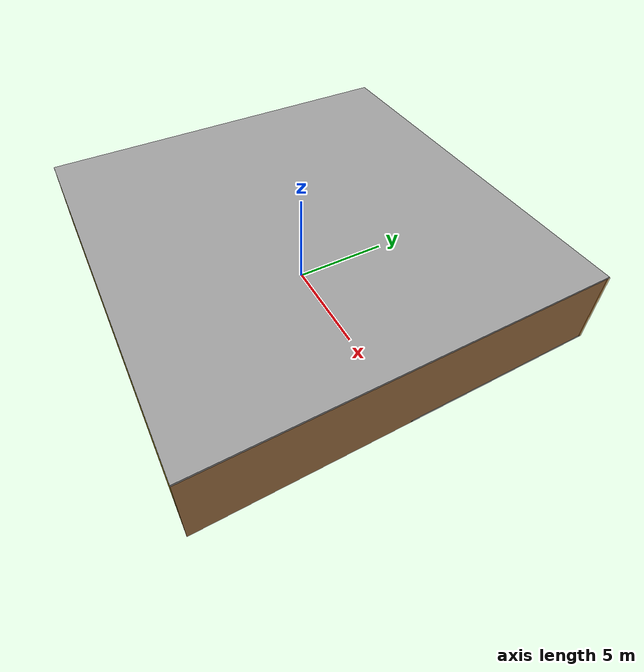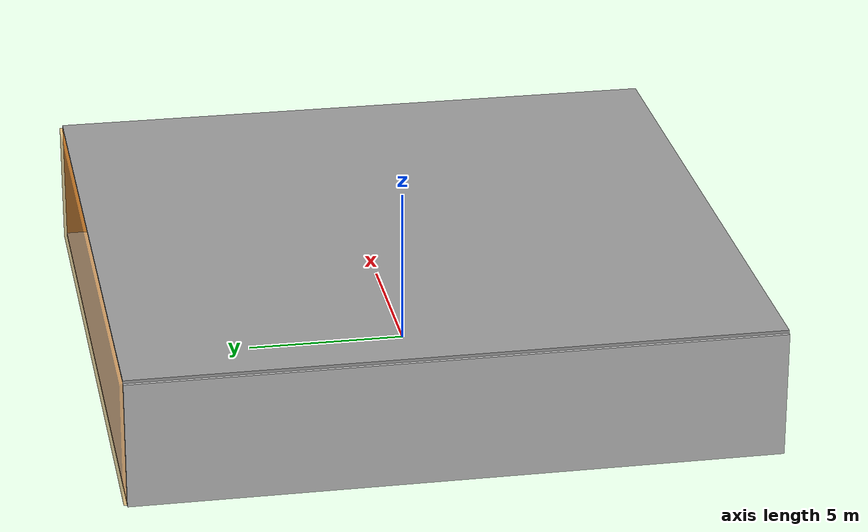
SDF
<sdf version="1.4">
 <world name="default">
  <physics type="ode">
   <max_step_size>0.001</max_step_size>
   <real_time_factor>1</real_time_factor>
   <real_time_update_rate>1000</real_time_update_rate>
   <gravity>0 0 -9.8</gravity>
  </physics>
  <scene><ambient>0.4 0.4 0.4 1</ambient><background>0.7 0.7 0.7 1</background><shadows>1</shadows></scene>
  <model name="Surrounding">
   <static>1</static>
   <link name="Ceiling">
    <collision name="Ceiling_Collision"><geometry><box><size>20 20 0.1</size></box></geometry></collision>
    <visual name="Ceiling_Visual">
     <geometry><box><size>20 20 0.1</size></box></geometry>
     <material>
      <script><uri>file://media/materials/scripts/gazebo.material</uri><name>Gazebo/GreyGradientSky</name></script>
     </material>
    </visual>
    <pose>0 0 4.05 0 0 0</pose>
   </link>
   <link name="Wall_South">
    <collision name="Wall_South_Collision">
     <geometry><box><size>20 0 4</size></box></geometry>
     <pose>0 0 2 0 -0 0</pose>
    </collision>
    <visual name="Wall_South_Visual">
     <pose>0 0 2 0 -0 0</pose>
     <geometry><box><size>20 0 4</size></box></geometry>
     <material>
      <script><uri>file://media/materials/scripts/gazebo.material</uri><name>Gazebo/ZincYellow</name></script>
     </material>
    </visual>
    <velocity_decay><linear>0</linear><angular>0</angular></velocity_decay>
    <pose>0 -10 0 0 -0 0</pose>
   </link>
   <link name="Wall_East">
    <collision name="Wall_21_Collision">
     <geometry><box><size>20 0 4</size></box></geometry>
     <pose>0 0 2 0 -0 0</pose>
    </collision>
    <visual name="Wall_21_Visual">
     <pose>0 0 2 0 -0 0</pose>
     <geometry><box><size>20 0 4</size></box></geometry>
     <material>
      <script><uri>file://media/materials/scripts/gazebo.material</uri><name>Gazebo/WoodPallet</name></script>
     </material>
    </visual>
    <velocity_decay><linear>0</linear><angular>0</angular></velocity_decay>
    <pose>10 0 0 0 -0 1.5708</pose>
   </link>
   <link name="Wall_North">
    <collision name="Wall_22_Collision">
     <geometry><box><size>20 0.2 4</size></box></geometry>
     <pose>0 0 2 0 -0 0</pose>
    </collision>
    <visual name="Wall_22_Visual">
     <pose>0 0 2 0 -0 0</pose>
     <geometry><box><size>20 0.2 4</size></box></geometry>
     <material>
      <script>
       <uri>file://media/materials/scripts/gazebo.material</uri>
       <name>Gazebo/OrangeTransparent</name>
      </script>
     </material>
    </visual>
    <velocity_decay><linear>0</linear><angular>0</angular></velocity_decay>
    <pose>0 10 0 0 -0 0</pose>
   </link>
   <link name="Wall_West">
    <collision name="Wall_23_Collision">
     <geometry><box><size>20 0.2 4</size></box></geometry>
     <pose>0 0 2 0 -0 0</pose>
    </collision>
    <visual name="Wall_23_Visual">
     <pose>0 0 2 0 -0 0</pose>
     <geometry><box><size>20 0.2 4</size></box></geometry>
     <material>
      <script><uri>file://media/materials/scripts/gazebo.material</uri><name>Gazebo/Pioneer2Body</name></script>
     </material>
    </visual>
    <velocity_decay><linear>0</linear><angular>0</angular></velocity_decay>
    <pose>-10 0 0 0 0 -1.5708</pose>
   </link>
   <link name="Ground_link">
    <collision name="collision">
     <pose>0 0 .05 0 -0 0</pose>
     <geometry><box><size>20 20 0.1</size></box></geometry>
    </collision>
    <visual name="visual">
     <pose>0 0 .05 0 -0 0</pose>
     <geometry><box><size>20 20 0.1</size></box></geometry>
     <material>
      <script><uri>file://media/materials/scripts/gazebo.material</uri><name>Gazebo/LightOff</name></script>
     </material>
    </visual>
   </link>
   <static>1</static>
  </model>
  <spherical_coordinates>
   <surface_model>EARTH_WGS84</surface_model>
   <latitude_deg>0</latitude_deg>
   <longitude_deg>0</longitude_deg>
   <elevation>0</elevation>
   <heading_deg>0</heading_deg>
  </spherical_coordinates>
  <light name="lightball_0" type="diffuse">
   <diffuse>0.8 0.8 0.8 1</diffuse>
   <specular>0.2 0.2 0.2 1</specular>
   <attenuation>
    <range>100</range>
    <constant>0.7</constant>
    <linear>0.01</linear>
    <quadratic>0.001</quadratic>
   </attenuation>
   <direction>-0.5 0.1 -0.9</direction>
   <pose>-7.12035215721 2.16213461542 3.70750567955 0 0 0</pose>
  </light>
  <light name="lightball_1" type="diffuse">
   <diffuse>0.8 0.8 0.8 1</diffuse>
   <specular>0.2 0.2 0.2 1</specular>
   <attenuation>
    <range>100</range>
    <constant>0.7</constant>
    <linear>0.01</linear>
    <quadratic>0.001</quadratic>
   </attenuation>
   <direction>-0.5 0.1 -0.9</direction>
   <pose>3.42236758568 -4.13913523208 2.17923522322 0 0 0</pose>
  </light>
  <light name="lightball_2" type="diffuse">
   <diffuse>0.8 0.8 0.8 1</diffuse>
   <specular>0.2 0.2 0.2 1</specular>
   <attenuation>
    <range>100</range>
    <constant>0.7</constant>
    <linear>0.01</linear>
    <quadratic>0.001</quadratic>
   </attenuation>
   <direction>-0.5 0.1 -0.9</direction>
   <pose>-2.00111504465 -3.87547802684 2.72980604983 0 0 0</pose>
  </light>
  <light name="lightball_3" type="diffuse">
   <diffuse>0.8 0.8 0.8 1</diffuse>
   <specular>0.2 0.2 0.2 1</specular>
   <attenuation>
    <range>100</range>
    <constant>0.7</constant>
    <linear>0.01</linear>
    <quadratic>0.001</quadratic>
   </attenuation>
   <direction>-0.5 0.1 -0.9</direction>
   <pose>-9.17268572952 -1.0968097723 3.02505899858 0 0 0</pose>
  </light>
  <light name="lightball_4" type="diffuse">
   <diffuse>0.8 0.8 0.8 1</diffuse>
   <specular>0.2 0.2 0.2 1</specular>
   <attenuation>
    <range>100</range>
    <constant>0.7</constant>
    <linear>0.01</linear>
    <quadratic>0.001</quadratic>
   </attenuation>
   <direction>-0.5 0.1 -0.9</direction>
   <pose>9.45619913314 -7.20256890418 1.97134024214 0 0 0</pose>
  </light>
  <light name="lightball_5" type="diffuse">
   <diffuse>0.8 0.8 0.8 1</diffuse>
   <specular>0.2 0.2 0.2 1</specular>
   <attenuation>
    <range>100</range>
    <constant>0.7</constant>
    <linear>0.01</linear>
    <quadratic>0.001</quadratic>
   </attenuation>
   <direction>-0.5 0.1 -0.9</direction>
   <pose>3.98528744762 4.84924033813 1.33168918937 0 0 0</pose>
  </light>
  <light name="lightball_6" type="diffuse">
   <diffuse>0.8 0.8 0.8 1</diffuse>
   <specular>0.2 0.2 0.2 1</specular>
   <attenuation>
    <range>100</range>
    <constant>0.7</constant>
    <linear>0.01</linear>
    <quadratic>0.001</quadratic>
   </attenuation>
   <direction>-0.5 0.1 -0.9</direction>
   <pose>-6.23333515832 -4.99299324327 1.49179807131 0 0 0</pose>
  </light>
  <light name="lightball_7" type="diffuse">
   <diffuse>0.8 0.8 0.8 1</diffuse>
   <specular>0.2 0.2 0.2 1</specular>
   <attenuation>
    <range>100</range>
    <constant>0.7</constant>
    <linear>0.01</linear>
    <quadratic>0.001</quadratic>
   </attenuation>
   <direction>-0.5 0.1 -0.9</direction>
   <pose>-4.49267122112 3.9777721251 1.29874027981 0 0 0</pose>
  </light>
  <light name="lightball_8" type="diffuse">
   <diffuse>0.8 0.8 0.8 1</diffuse>
   <specular>0.2 0.2 0.2 1</specular>
   <attenuation>
    <range>100</range>
    <constant>0.7</constant>
    <linear>0.01</linear>
    <quadratic>0.001</quadratic>
   </attenuation>
   <direction>-0.5 0.1 -0.9</direction>
   <pose>1.39847160059 -0.717746460832 1.72028953232 0 0 0</pose>
  </light>
  <include>
   <uri>model://textured_shapes</uri>
   <pose>-7.56090215241 -3.82551380828 0 0 0 0.396331528453</pose>
  </include>
  <include>
   <uri>model://construction_cone</uri>
   <pose>-7.567285676 4.62433578419 0 0 0 0.935951935257</pose>
  </include>
  <include>
   <uri>model://textured_shapes</uri>
   <pose>-5.25541267495 4.97370394244 0 0 0 1.71027334284</pose>
  </include>
  <include>
   <uri>model://textured_shapes</uri>
   <pose>1.68879572076 -3.75004039104 0 0 0 0.642291051769</pose>
  </include>
  <include><uri>model://cabinet</uri><pose>2.13477443593 1.26897997055 0 0 0 1.00563889086</pose></include>
  <include><uri>model://table</uri><pose>7.62858714842 1.44370670639 0 0 0 2.07958072351</pose></include>
  <include><uri>model://table</uri><pose>7.43365006088 3.90033795127 0 0 0 0.597223484717</pose></include>
 </world>
</sdf>

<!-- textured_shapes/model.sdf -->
<sdf version="1.6">
  <model name="textured_shapes">
    <pose>0 0 0.5 0 0 0</pose>
    <link name="box">
      <pose>0 -1.5 0 0 0 0</pose>
      <collision name="collision">
        <geometry>
          <box>
            <size>1 1 1</size>
          </box>
        </geometry>
      </collision>
      <visual name="visual">
        <geometry>
          <box>
            <size>1 1 1</size>
          </box>
        </geometry>
        <material>
          <script>
            <uri>model://../model_source/models/textured_shapes/materials/scripts</uri>
            <uri>model://../model_source/models/textured_shapes/materials/textures</uri>
            <name>TexturedShape/Squares</name>
          </script>
        </material>
      </visual>
    </link>
    <link name="sphere">
      <collision name="collision">
        <geometry>
          <sphere>
            <radius>0.5</radius>
          </sphere>
        </geometry>
      </collision>
      <visual name="visual">
        <geometry>
          <sphere>
            <radius>0.5</radius>
          </sphere>
        </geometry>
        <material>
          <script>
            <uri>model://../model_source/models/textured_shapes/materials/scripts</uri>
            <uri>model://../model_source/models/textured_shapes/materials/textures</uri>
            <name>TexturedShape/Squares</name>
          </script>
        </material>
      </visual>
    </link>
    <link name="cylinder">
      <pose>0 1.5 0 0 0 0</pose>
      <collision name="collision">
        <geometry>
          <cylinder>
            <radius>0.5</radius>
            <length>1</length>
          </cylinder>
        </geometry>
      </collision>
      <visual name="visual">
        <geometry>
          <cylinder>
            <radius>0.5</radius>
            <length>1</length>
          </cylinder>
        </geometry>
        <material>
          <script>
            <uri>model://../model_source/models/textured_shapes/materials/scripts</uri>
            <uri>model://../model_source/models/textured_shapes/materials/textures</uri>
            <name>TexturedShape/Squares</name>
          </script>
        </material>
      </visual>
    </link>
  </model>
</sdf>

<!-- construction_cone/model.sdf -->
<sdf version="1.5">
  <model name="Construction Cone">
    <link name="link">
      <collision name="collision">
        <geometry>
          <mesh>
            <scale>10 10 10</scale>
            <uri>file://isr-testbed/construction_cone/meshes/construction_cone.dae</uri>
          </mesh>
        </geometry>
      </collision>
      <visual name="visual">
        <geometry>
          <mesh>
            <scale>10 10 10</scale>
            <uri>file://isr-testbed/construction_cone/meshes/construction_cone.dae</uri>
          </mesh>
        </geometry>
      </visual>
    </link>
  </model>
</sdf>

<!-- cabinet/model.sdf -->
<sdf version="1.5">
  <model name="cabinet">
    <static>true</static>
    <link name="cabinet_bottom_plate">
      <inertial>
        <pose>0 0 -1 0 0 0</pose>
        <inertia>
          <ixx>2.050000</ixx>
          <ixy>0</ixy>
          <ixz>0</ixz>
          <iyy>2.050000</iyy>
          <iyz>0</iyz>
          <izz>2.050000</izz>
        </inertia>
        <mass>25.000000</mass>
      </inertial>
      <collision name="cabinet_bottom_plate_geom">
        <pose>0 0 0.010000 0 0 0</pose>
        <geometry>
          <box>
            <size>0.450000 0.450000 0.020000</size>
          </box>
        </geometry>
      </collision>
      <visual name="cabinet_bottom_plate_geom_visual">
        <pose>0 0 0.010000 0 0 0</pose>
        <geometry>
          <box>
            <size>0.450000 0.450000 0.020000</size>
          </box>
        </geometry>
        <material>
          <script>
            <uri>model://media/materials/scripts/gazebo.material</uri>
            <name>Gazebo/Wood</name>
          </script>
        </material>
      </visual>
      <collision name="cabinet_bottom_plate_geom_cabinet_back_plate">
        <pose>0.235000 0 0.510000 0 0 0</pose>
        <geometry>
          <box>
            <size>0.020000 0.450000 1.020000</size>
          </box>
        </geometry>
      </collision>
      <visual name="cabinet_bottom_plate_geom_cabinet_back_plate_visual">
        <pose>0.235000 0 0.510000 0 0 0</pose>
        <geometry>
          <box>
            <size>0.020000 0.450000 1.020000</size>
          </box>
        </geometry>
        <material>
          <script>
            <uri>model://media/materials/scripts/gazebo.material</uri>
            <name>Gazebo/Wood</name>
          </script>
        </material>
      </visual>
      <collision name="cabinet_bottom_plate_geom_cabinet_left_plate">
        <pose>0 0.235000 0.510000 0 0 0</pose>
        <geometry>
          <box>
            <size>0.450000 0.020000 1.020000</size>
          </box>
        </geometry>
      </collision>
      <visual name="cabinet_bottom_plate_geom_cabinet_left_plate_visual">
        <pose>0 0.235000 0.510000 0 0 0</pose>
        <geometry>
          <box>
            <size>0.450000 0.020000 1.020000</size>
          </box>
        </geometry>
        <material>
          <script>
            <uri>model://media/materials/scripts/gazebo.material</uri>
            <name>Gazebo/Wood</name>
          </script>
        </material>
      </visual>
      <collision name="cabinet_bottom_plate_geom_cabinet_middle_plate">
        <pose>0 0 0.510000 0 0 0</pose>
        <geometry>
          <box>
            <size>0.450000 0.450000 0.020000</size>
          </box>
        </geometry>
      </collision>
      <visual name="cabinet_bottom_plate_geom_cabinet_middle_plate_visual">
        <pose>0 0 0.510000 0 0 0</pose>
        <geometry>
          <box>
            <size>0.450000 0.450000 0.020000</size>
          </box>
        </geometry>
        <material>
          <script>
            <uri>model://media/materials/scripts/gazebo.material</uri>
            <name>Gazebo/Wood</name>
          </script>
        </material>
      </visual>
      <collision name="cabinet_bottom_plate_geom_cabinet_right_plate">
        <pose>0 -0.235000 0.510000 0 0 0</pose>
        <geometry>
          <box>
            <size>0.450000 0.020000 1.020000</size>
          </box>
        </geometry>
      </collision>
      <visual name="cabinet_bottom_plate_geom_cabinet_right_plate_visual">
        <pose>0 -0.235000 0.510000 0 0 0</pose>
        <geometry>
          <box>
            <size>0.450000 0.020000 1.020000</size>
          </box>
        </geometry>
        <material>
          <script>
            <uri>model://media/materials/scripts/gazebo.material</uri>
            <name>Gazebo/Wood</name>
          </script>
        </material>
      </visual>
      <collision name="cabinet_bottom_plate_geom_cabinet_top_plate">
        <pose>0 0 1.010000 0 0 0</pose>
        <geometry>
          <box>
            <size>0.450000 0.450000 0.020000</size>
          </box>
        </geometry>
      </collision>
      <visual name="cabinet_bottom_plate_geom_cabinet_top_plate_visual">
        <pose>0 0 1.010000 0 0 0</pose>
        <geometry>
          <box>
            <size>0.450000 0.450000 0.020000</size>
          </box>
        </geometry>
        <material>
          <script>
            <uri>model://media/materials/scripts/gazebo.material</uri>
            <name>Gazebo/Wood</name>
          </script>
        </material>
      </visual>
    </link>
  </model>
</sdf>

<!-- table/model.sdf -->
<sdf version="1.5">
  <model name="table">
    <static>true</static>
    <link name="link">
      <collision name="surface">
        <pose>0 0 1.0 0 0 0</pose>
        <geometry>
          <box>
            <size>1.5 0.8 0.03</size>
          </box>
        </geometry>
        <surface>
          <friction>
            <ode>
              <mu>0.6</mu>
              <mu2>0.6</mu2>
            </ode>
          </friction>
        </surface>
      </collision>
      <visual name="visual1">
        <pose>0 0 1.0 0 0 0</pose>
        <geometry>
          <box>
            <size>1.5 0.8 0.03</size>
          </box>
        </geometry>
        <material>
          <script>
            <uri>model://media/materials/scripts/gazebo.material</uri>
            <name>Gazebo/Wood</name>
          </script>
        </material>
      </visual>
      <collision name="front_left_leg">
        <pose>0.68 0.38 0.5 0 0 0</pose>
        <geometry>
          <cylinder>
            <radius>0.02</radius>
            <length>1.0</length>
          </cylinder>
        </geometry>
      </collision>
      <visual name="front_left_leg">
        <pose>0.68 0.38 0.5 0 0 0</pose>
        <geometry>
          <cylinder>
            <radius>0.02</radius>
            <length>1.0</length>
          </cylinder>
        </geometry>
        <material>
          <script>
            <uri>model://media/materials/scripts/gazebo.material</uri>
            <name>Gazebo/Grey</name>
          </script>
        </material>
      </visual>
      <collision name="front_right_leg">
        <pose>0.68 -0.38 0.5 0 0 0</pose>
        <geometry>
          <cylinder>
            <radius>0.02</radius>
            <length>1.0</length>
          </cylinder>
        </geometry>
      </collision>
      <visual name="front_right_leg">
        <pose>0.68 -0.38 0.5 0 0 0</pose>
        <geometry>
          <cylinder>
            <radius>0.02</radius>
            <length>1.0</length>
          </cylinder>
        </geometry>
        <material>
          <script>
            <uri>model://media/materials/scripts/gazebo.material</uri>
            <name>Gazebo/Grey</name>
          </script>
        </material>
      </visual>
      <collision name="back_right_leg">
        <pose>-0.68 -0.38 0.5 0 0 0</pose>
        <geometry>
          <cylinder>
            <radius>0.02</radius>
            <length>1.0</length>
          </cylinder>
        </geometry>
      </collision>
      <visual name="back_right_leg">
        <pose>-0.68 -0.38 0.5 0 0 0</pose>
        <geometry>
          <cylinder>
            <radius>0.02</radius>
            <length>1.0</length>
          </cylinder>
        </geometry>
        <material>
          <script>
            <uri>model://media/materials/scripts/gazebo.material</uri>
            <name>Gazebo/Grey</name>
          </script>
        </material>
      </visual>
      <collision name="back_left_leg">
        <pose>-0.68 0.38 0.5 0 0 0</pose>
        <geometry>
          <cylinder>
            <radius>0.02</radius>
            <length>1.0</length>
          </cylinder>
        </geometry>
      </collision>
      <visual name="back_left_leg">
        <pose>-0.68 0.38 0.5 0 0 0</pose>
        <geometry>
          <cylinder>
            <radius>0.02</radius>
            <length>1.0</length>
          </cylinder>
        </geometry>
        <material>
          <script>
            <uri>model://media/materials/scripts/gazebo.material</uri>
            <name>Gazebo/Grey</name>
          </script>
        </material>
      </visual>
    </link>
  </model>
</sdf>
